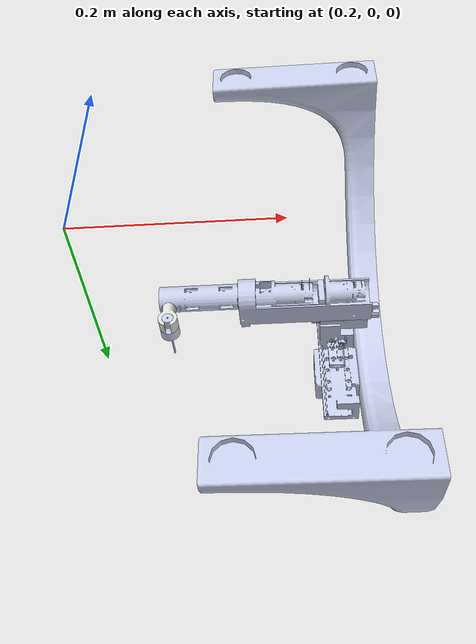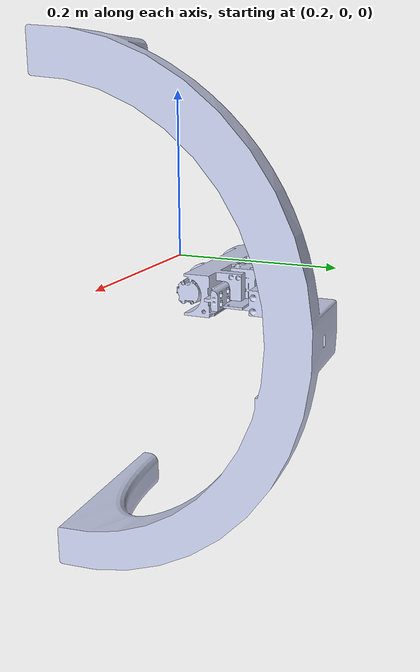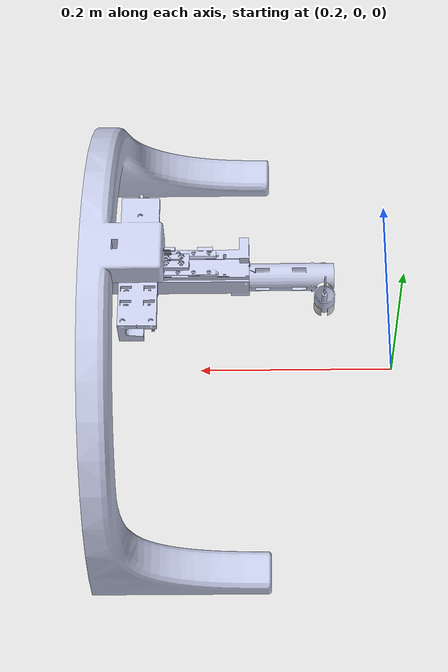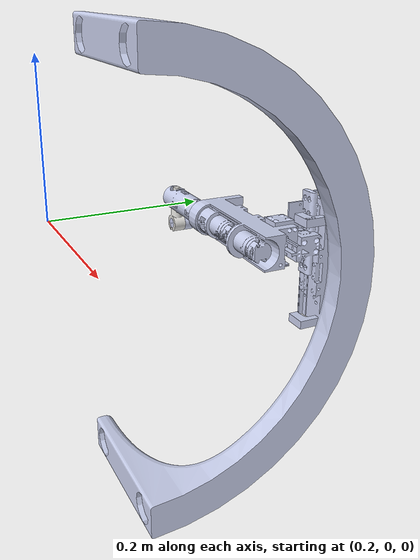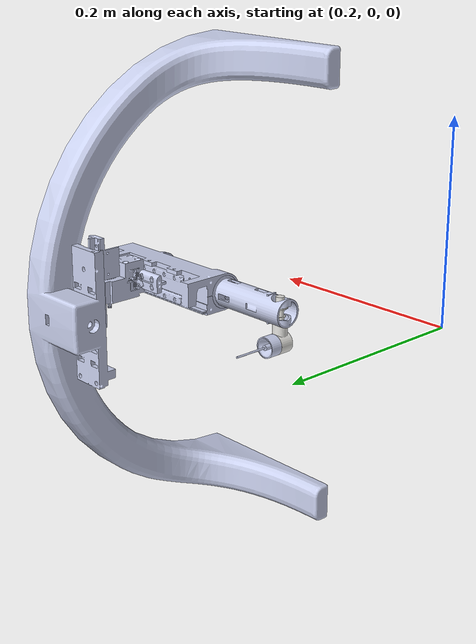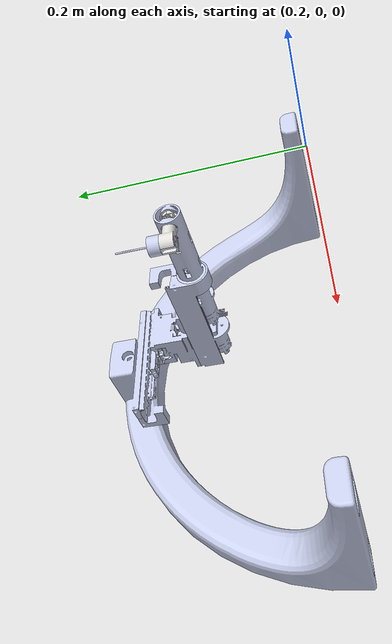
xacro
<?xml version="1.0" encoding="UTF-8"?>
<robot xmlns:xacro="http://wiki.ros.org/xacro" name="piezobot">

  <!-- Use this if parameters are set from the launch file, otherwise delete -->
  <xacro:arg name="prefix" default="" />

  <xacro:arg name="use_mock_hardware" default="true" />
  <xacro:arg name="mock_sensor_commands" default="false" />
  <xacro:arg name="sim_gazebo_classic" default="false" />
  <xacro:arg name="sim_gazebo" default="false" />
  <xacro:arg name="simulation_controllers" default="" />

  <xacro:include filename="$(find piezobot_description)/urdf/piezobot/piezobot_macro.xacro"/>
  <xacro:include filename="$(find piezobot_description)/urdf/piezobot/piezobot_macro.ros2_control.xacro"/>

  <!-- create link fixed to the "world" -->
  <link name="world" />

  <!-- Load robot's macro with parameters -->
  <!-- set prefix if multiple robots are used -->
  <xacro:piezobot prefix="$(arg prefix)" parent="world" >
    <origin xyz="0 0 0" rpy="0 0 0" />          <!-- position robot in the world -->
  </xacro:piezobot>

  <xacro:piezobot_ros2_control
    name="piezobot"
    prefix="$(arg prefix)"
    use_mock_hardware="$(arg use_mock_hardware)"
    mock_sensor_commands="$(arg mock_sensor_commands)"
    sim_gazebo_classic="$(arg sim_gazebo_classic)"
    sim_gazebo="$(arg sim_gazebo)"
    simulation_controllers="$(arg simulation_controllers)" />

</robot>

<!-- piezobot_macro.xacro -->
<robot xmlns:xacro="http://wiki.ros.org/xacro">

  <xacro:include filename="$(find piezobot_description)/urdf/common.xacro" />

  <xacro:macro name="piezobot" params="prefix parent *origin">
    <!-- LINKS -->
    <!-- base link -->

  <link
    name="base_link">
    <inertial>
      <origin
        xyz="0.466086410238613 0.128601280657146 1.52598063551311E-05"
        rpy="0 0 0" />
      <mass
        value="1.29503765484135" />
      <inertia
        ixx="0.050296768645492"
        ixy="-0.00212949050438142"
        ixz="-1.0561632028986E-06"
        iyy="0.0429205675878005"
        iyz="3.05758301837118E-06"
        izz="0.0110579088448838" />
    </inertial>
    <visual>
      <origin
        xyz="0 0 0"
        rpy="0 0 0" />
      <geometry>
        <mesh
          filename="package://piezobot_description/meshes/visual/base_link.STL" />
      </geometry>
      <material
        name="">
        <color
          rgba="0.792156862745098 0.819607843137255 0.933333333333333 1" />
      </material>
    </visual>
    <collision>
      <origin
        xyz="0 0 0"
        rpy="0 0 0" />
      <geometry>
        <mesh
          filename="package://piezobot_description/meshes/visual/base_link.STL" />
      </geometry>
    </collision>
  </link>

  <link
    name="${prefix}link1">
    <inertial>
      <origin
        xyz="0.0383281520983859 -0.000997939340236759 0.0299999999999999"
        rpy="0 0 0" />
      <mass
        value="0.0444765824614467" />
      <inertia
        ixx="1.13600808097973E-05"
        ixy="-4.02900087041683E-07"
        ixz="-2.1800785952902E-07"
        iyy="1.13600808097974E-05"
        iyz="-2.18007859529017E-07"
        izz="1.78116182775241E-05" />
    </inertial>
    <visual>
      <origin
        xyz="0 0 0"
        rpy="0 0 0" />
      <geometry>
        <mesh
          filename="package://piezobot_description/meshes/visual/link1.STL" />
      </geometry>
      <material
        name="">
        <color
          rgba="0.792156862745098 0.819607843137255 0.933333333333333 1" />
      </material>
    </visual>
    <collision>
      <origin
        xyz="0 0 0"
        rpy="0 0 0" />
      <geometry>
        <mesh
          filename="package://piezobot_description/meshes/visual/link1.STL" />
      </geometry>
    </collision>
  </link>

  <link
    name="${prefix}link2">
    <inertial>
      <origin
        xyz="0.074337310250134 -0.00896882548978644 0.000725036338370094"
        rpy="0 0 0" />
      <mass
        value="0.0705862577599623" />
      <inertia
        ixx="1.68829829593606E-05"
        ixy="7.65118490205231E-07"
        ixz="4.00746798090171E-07"
        iyy="0.000123193806240612"
        iyz="8.495430850149E-07"
        izz="0.000120938546858163" />
    </inertial>
    <visual>
      <origin
        xyz="0 0 0"
        rpy="0 0 0" />
      <geometry>
        <mesh
          filename="package://piezobot_description/meshes/visual/link2.STL" />
      </geometry>
      <material
        name="">
        <color
          rgba="0.792156862745098 0.819607843137255 0.933333333333333 1" />
      </material>
    </visual>
    <collision>
      <origin
        xyz="0 0 0"
        rpy="0 0 0" />
      <geometry>
        <mesh
          filename="package://piezobot_description/meshes/visual/link2.STL" />
      </geometry>
    </collision>
  </link>

 <link
    name="${prefix}link3">
    <inertial>
      <origin
        xyz="0.0773857541891932 -0.000954122631570069 2.07066308019477E-06"
        rpy="0 0 0" />
      <mass
        value="0.0548025952498245" />
      <inertia
        ixx="6.24220412729047E-06"
        ixy="-7.6296515598419E-07"
        ixz="-2.83404710187672E-10"
        iyy="2.07415544139928E-05"
        iyz="-4.87659144462771E-11"
        izz="2.04580259705171E-05" />
    </inertial>
    <visual>
      <origin
        xyz="0 0 0"
        rpy="0 0 0" />
      <geometry>
        <mesh
          filename="package://piezobot_description/meshes/visual/link3.STL" />
      </geometry>
      <material
        name="">
        <color
          rgba="0.792156862745098 0.819607843137255 0.933333333333333 1" />
      </material>
    </visual>
    <collision>
      <origin
        xyz="0 0 0"
        rpy="0 0 0" />
      <geometry>
        <mesh
          filename="package://piezobot_description/meshes/visual/link3.STL" />
      </geometry>
    </collision>
  </link>

  <link
    name="${prefix}link4">
    <inertial>
      <origin
        xyz="0.0127235820815352 -0.000193353675692272 1.46443792120587E-07"
        rpy="0 0 0" />
      <mass
        value="0.00527923380119844" />
      <inertia
        ixx="1.78136169808871E-07"
        ixy="4.51532577823857E-09"
        ixz="8.80923494586544E-12"
        iyy="5.03389465905407E-07"
        iyz="-4.04775165869029E-13"
        izz="4.45693899182304E-07" />
    </inertial>
    <visual>
      <origin
        xyz="0 0 0"
        rpy="0 0 0" />
      <geometry>
        <mesh
          filename="package://piezobot_description/meshes/visual/link4.STL" />
      </geometry>
      <material
        name="">
        <color
          rgba="0.87843137254902 0.874509803921569 0.858823529411765 1" />
      </material>
    </visual>
    <collision>
      <origin
        xyz="0 0 0"
        rpy="0 0 0" />
      <geometry>
        <mesh
          filename="package://piezobot_description/meshes/visual/link4.STL" />
      </geometry>
    </collision>
  </link>

 <link
    name="${prefix}link5">
    <inertial>
      <origin
        xyz="-0.00657447404539973 -4.02857360942699E-08 3.5108632380227E-08"
        rpy="0 0 0" />
      <mass
        value="0.00320265290491734" />
      <inertia
        ixx="1.53212724305889E-07"
        ixy="-2.90976279899424E-14"
        ixz="2.5358306292767E-14"
        iyy="2.29521683409466E-07"
        iyz="4.1964692286221E-12"
        izz="2.29525317344298E-07" />
    </inertial>
    <visual>
      <origin
        xyz="0 0 0"
        rpy="0 0 0" />
      <geometry>
        <mesh
          filename="package://piezobot_description/meshes/visual/link5.STL" />
      </geometry>
      <material
        name="">
        <color
          rgba="0.792156862745098 0.819607843137255 0.933333333333333 1" />
      </material>
    </visual>
    <collision>
      <origin
        xyz="0 0 0"
        rpy="0 0 0" />
      <geometry>
        <mesh
          filename="package://piezobot_description/meshes/visual/link5.STL" />
      </geometry>
    </collision>
  </link>

  <link
    name="${prefix}link6">
    <inertial>
      <origin
        xyz="-0.0246544117646466 -1.94289029309402E-16 -4.74880551548651E-17"
        rpy="0 0 0" />
      <mass
        value="0.000144199102799771" />
      <inertia
        ixx="5.77135703205669E-11"
        ixy="-9.16213244820369E-24"
        ixz="-4.6972378904298E-24"
        iyy="3.8716370560674E-08"
        iyz="-1.42614871377314E-28"
        izz="3.8716370560674E-08" />
    </inertial>
    <visual>
      <origin
        xyz="0 0 0"
        rpy="0 0 0" />
      <geometry>
        <mesh
          filename="package://piezobot_description/meshes/visual/link6.STL" />
      </geometry>
      <material
        name="">
        <color
          rgba="0.792156862745098 0.819607843137255 0.933333333333333 1" />
      </material>
    </visual>
    <collision>
      <origin
        xyz="0 0 0"
        rpy="0 0 0" />
      <geometry>
        <mesh
          filename="package://piezobot_description/meshes/visual/link6.STL" />
      </geometry>
    </collision>
  </link>

    <!-- All-zero tool frame. This frame should correspond to the TOOL frame of the robot's controller.) -->
    <!-- tool link -->

<!-- START Delete if not needed -->
    <!-- This frame should correspond to the BASE coordinate system of robot's controller.) -->
    <!-- Frame for mounting EEF models to a manipulator. x+ axis points forward (REP 103). -->
<!-- END Delete if not needed  -->
    <!-- END LINKS -->

    <!-- JOINTS -->
    <!-- base_joint fixes base_link to the environment -->
    <joint name="${prefix}base_joint" type="fixed">
      <xacro:insert_block name="origin" />
      <parent link="${parent}"/>
      <child link="${prefix}base_link"/>
    </joint>
    <!-- joint 1 -->
   <joint
    name="${prefix}joint1"
    type="prismatic">
    <origin
      xyz="0.44895 0.2235 0.069"
      rpy="1.5708 1.5708 0" />
    <parent
      link="base_link" />
    <child
      link="link1" />
    <axis
      xyz="1 0 0" />
    <limit
      lower="0"
      upper="0.074"
      effort="0"
      velocity="0" />
  </joint>

   <joint
    name="${prefix}joint2"
    type="prismatic">
    <origin
      xyz="0.03603 0.04605 0.0587"
      rpy="-1.5708 0 -1.5708" />
    <parent
      link="link1" />
    <child
      link="link2" />
    <axis
      xyz="-1 0 0" />
    <limit
      lower="0"
      upper="0.074"
      effort="0"
      velocity="0" />
  </joint>

  <joint
    name="${prefix}joint3"
    type="revolute">
    <origin
      xyz="0.057635 -0.0233 0.0013"
      rpy="-3.1416 0 0" />
    <parent
      link="link2" />
    <child
      link="link3" />
    <axis
      xyz="1 0 0" />
    <limit
      lower="-1.57"
      upper="1.57"
      effort="0"
      velocity="0" />
  </joint>
  <joint
    name="${prefix}joint4"
    type="revolute">
    <origin
      xyz="0.1635 0 -0.0045623"
      rpy="3.1416 1.5708 0" />
    <parent
      link="link3" />
    <child
      link="link4" />
    <axis
      xyz="1 0 0" />
    <limit
      lower="-1.57"
      upper="1.57"
      effort="0"
      velocity="0" />
  </joint>
   <joint
    name="${prefix}joint5"
    type="revolute">
    <origin
      xyz="0.026042 0 0"
      rpy="-1.5708 0 -1.5708" />
    <parent
      link="link4" />
    <child
      link="link5" />
    <axis
      xyz="-1 0 0" />
    <limit
      lower="-3.14"
      upper="3.14"
      effort="0"
      velocity="0" />
  </joint>
      <joint
    name="${prefix}joint6"
    type="prismatic">
    <origin
      xyz="0 0 0"
      rpy="0 0 0" />
    <parent
      link="link5" />
    <child
      link="link6" />
    <axis
      xyz="1 0 0" />
    <limit
      lower="0"
      upper="0.1"
      effort="0"
      velocity="0" />
  </joint>

    <!-- tool frame - fixed frame -->
    <!-- END JOINTS -->

<!-- START Delete if not needed -->
<!-- END Delete if not needed  -->

  </xacro:macro>
</robot>
